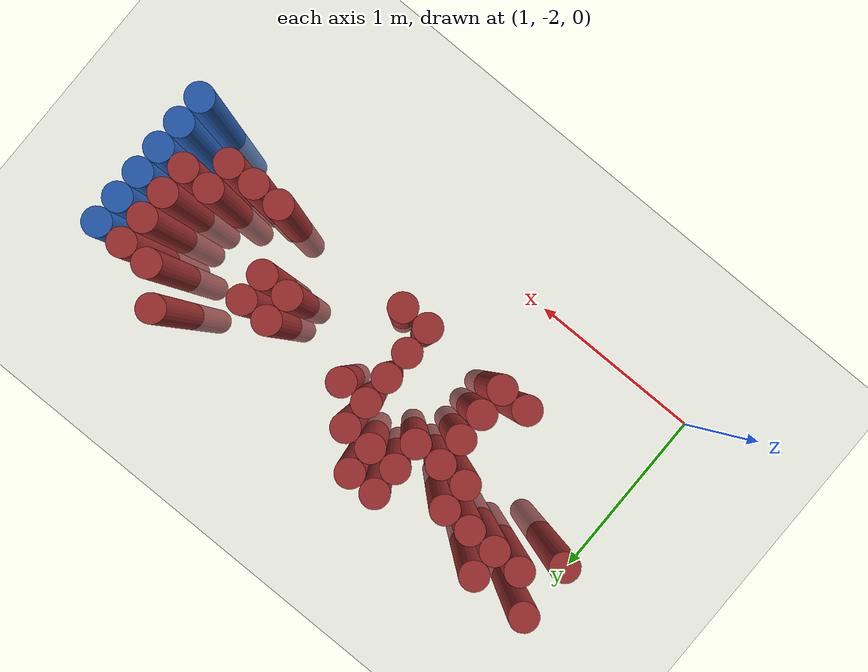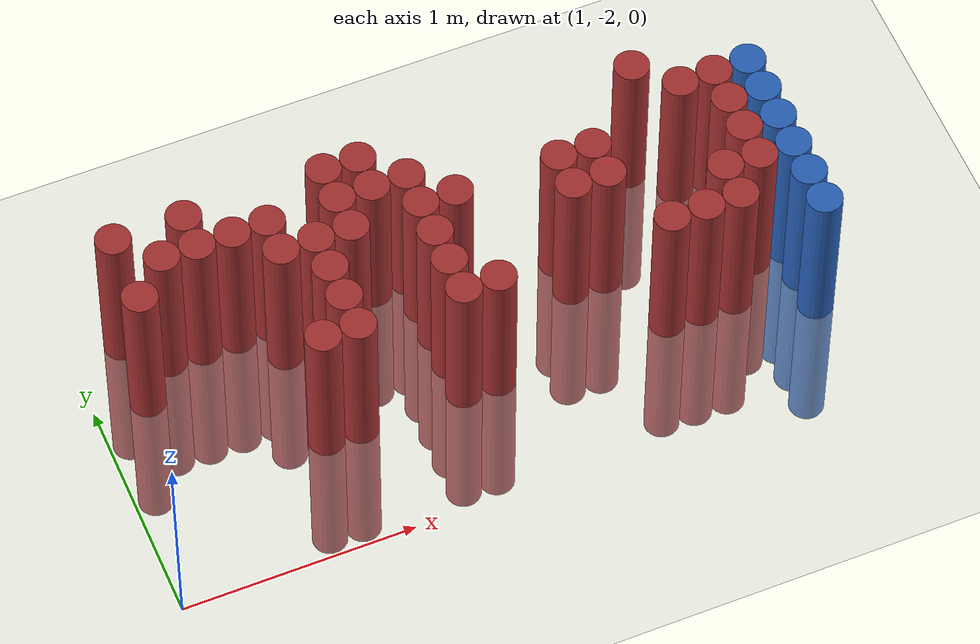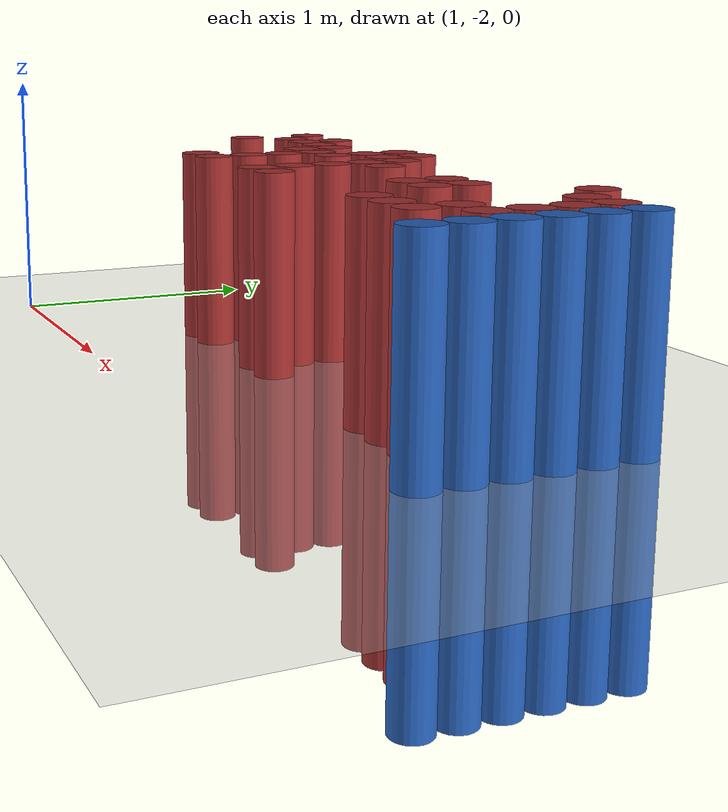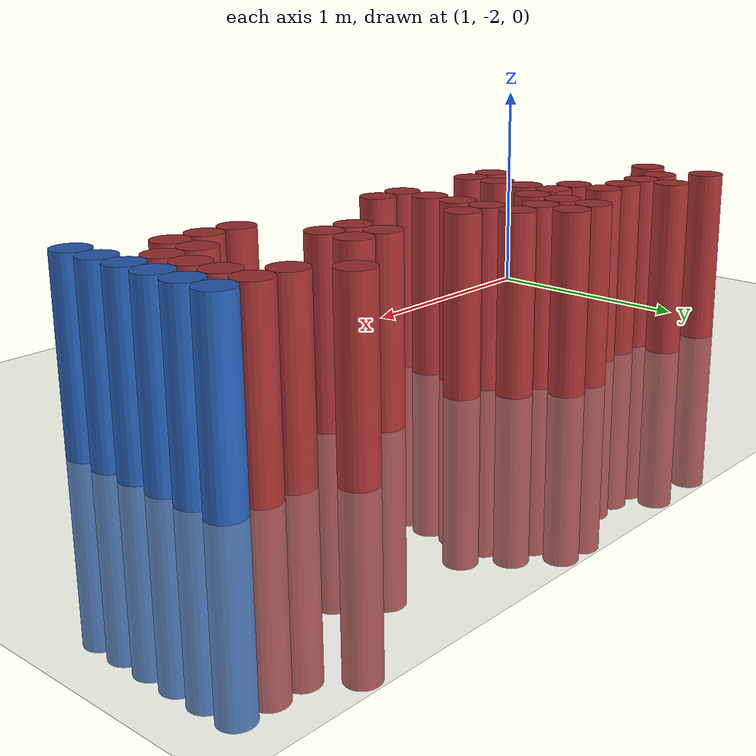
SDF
<sdf version="1.6">
 <world name="default">
  <model name="ground_plane">
   <static>1</static>
   <link name="link">
    <collision name="collision">
     <geometry><plane><normal>0 0 1</normal><size>100 100</size></plane></geometry>
     <surface><friction><ode><mu>100</mu><mu2>50</mu2></ode></friction></surface>
    </collision>
    <visual name="visual">
     <cast_shadows>0</cast_shadows>
     <geometry><plane><normal>0 0 1</normal><size>100 100</size></plane></geometry>
     <material>
      <script><uri>file://media/materials/scripts/gazebo.material</uri><name>Gazebo/Grey</name></script>
     </material>
    </visual>
   </link>
  </model>
  <model name="unit_cylinder_92">
   <static>1</static>
   <pose>3.925000 -1.625000 0.000000 0.000000 0.000000 0.000000</pose>
   <link name="link">
    <inertial>
     <mass>1</mass>
     <inertia><ixx>0.145833</ixx><ixy>0</ixy><ixz>0</ixz><iyy>0.145833</iyy><iyz>0</iyz><izz>0.125</izz></inertia>
    </inertial>
    <collision name="collision">
     <geometry><cylinder><radius>0.075000</radius><length>1.5</length></cylinder></geometry>
    </collision>
    <visual name="visual">
     <geometry><cylinder><radius>0.075000</radius><length>1.5</length></cylinder></geometry>
     <material>
      <ambient>0.152000 0.379000 0.720000 1</ambient>
      <diffuse>0.152000 0.379000 0.720000 1</diffuse>
     </material>
     <material>
      <script><name>Gazebo/Grey</name><uri>file://media/materials/scripts/gazebo.material</uri></script>
     </material>
    </visual>
   </link>
  </model>
  <model name="unit_cylinder_94">
   <static>1</static>
   <pose>3.925000 -1.475000 0.000000 0.000000 0.000000 0.000000</pose>
   <link name="link">
    <inertial>
     <mass>1</mass>
     <inertia><ixx>0.145833</ixx><ixy>0</ixy><ixz>0</ixz><iyy>0.145833</iyy><iyz>0</iyz><izz>0.125</izz></inertia>
    </inertial>
    <collision name="collision">
     <geometry><cylinder><radius>0.075000</radius><length>1.5</length></cylinder></geometry>
    </collision>
    <visual name="visual">
     <geometry><cylinder><radius>0.075000</radius><length>1.5</length></cylinder></geometry>
     <material>
      <ambient>0.152000 0.379000 0.720000 1</ambient>
      <diffuse>0.152000 0.379000 0.720000 1</diffuse>
     </material>
     <material>
      <script><name>Gazebo/Grey</name><uri>file://media/materials/scripts/gazebo.material</uri></script>
     </material>
    </visual>
   </link>
  </model>
  <model name="unit_cylinder_96">
   <static>1</static>
   <pose>3.925000 -1.325000 0.000000 0.000000 0.000000 0.000000</pose>
   <link name="link">
    <inertial>
     <mass>1</mass>
     <inertia><ixx>0.145833</ixx><ixy>0</ixy><ixz>0</ixz><iyy>0.145833</iyy><iyz>0</iyz><izz>0.125</izz></inertia>
    </inertial>
    <collision name="collision">
     <geometry><cylinder><radius>0.075000</radius><length>1.5</length></cylinder></geometry>
    </collision>
    <visual name="visual">
     <geometry><cylinder><radius>0.075000</radius><length>1.5</length></cylinder></geometry>
     <material>
      <ambient>0.152000 0.379000 0.720000 1</ambient>
      <diffuse>0.152000 0.379000 0.720000 1</diffuse>
     </material>
     <material>
      <script><name>Gazebo/Grey</name><uri>file://media/materials/scripts/gazebo.material</uri></script>
     </material>
    </visual>
   </link>
  </model>
  <model name="unit_cylinder_98">
   <static>1</static>
   <pose>3.925000 -1.175000 0.000000 0.000000 0.000000 0.000000</pose>
   <link name="link">
    <inertial>
     <mass>1</mass>
     <inertia><ixx>0.145833</ixx><ixy>0</ixy><ixz>0</ixz><iyy>0.145833</iyy><iyz>0</iyz><izz>0.125</izz></inertia>
    </inertial>
    <collision name="collision">
     <geometry><cylinder><radius>0.075000</radius><length>1.5</length></cylinder></geometry>
    </collision>
    <visual name="visual">
     <geometry><cylinder><radius>0.075000</radius><length>1.5</length></cylinder></geometry>
     <material>
      <ambient>0.152000 0.379000 0.720000 1</ambient>
      <diffuse>0.152000 0.379000 0.720000 1</diffuse>
     </material>
     <material>
      <script><name>Gazebo/Grey</name><uri>file://media/materials/scripts/gazebo.material</uri></script>
     </material>
    </visual>
   </link>
  </model>
  <model name="unit_cylinder_100">
   <static>1</static>
   <pose>3.925000 -1.025000 0.000000 0.000000 0.000000 0.000000</pose>
   <link name="link">
    <inertial>
     <mass>1</mass>
     <inertia><ixx>0.145833</ixx><ixy>0</ixy><ixz>0</ixz><iyy>0.145833</iyy><iyz>0</iyz><izz>0.125</izz></inertia>
    </inertial>
    <collision name="collision">
     <geometry><cylinder><radius>0.075000</radius><length>1.5</length></cylinder></geometry>
    </collision>
    <visual name="visual">
     <geometry><cylinder><radius>0.075000</radius><length>1.5</length></cylinder></geometry>
     <material>
      <ambient>0.152000 0.379000 0.720000 1</ambient>
      <diffuse>0.152000 0.379000 0.720000 1</diffuse>
     </material>
     <material>
      <script><name>Gazebo/Grey</name><uri>file://media/materials/scripts/gazebo.material</uri></script>
     </material>
    </visual>
   </link>
  </model>
  <model name="unit_cylinder_102">
   <static>1</static>
   <pose>3.925000 -0.875000 0.000000 0.000000 0.000000 0.000000</pose>
   <link name="link">
    <inertial>
     <mass>1</mass>
     <inertia><ixx>0.145833</ixx><ixy>0</ixy><ixz>0</ixz><iyy>0.145833</iyy><iyz>0</iyz><izz>0.125</izz></inertia>
    </inertial>
    <collision name="collision">
     <geometry><cylinder><radius>0.075000</radius><length>1.5</length></cylinder></geometry>
    </collision>
    <visual name="visual">
     <geometry><cylinder><radius>0.075000</radius><length>1.5</length></cylinder></geometry>
     <material>
      <ambient>0.152000 0.379000 0.720000 1</ambient>
      <diffuse>0.152000 0.379000 0.720000 1</diffuse>
     </material>
     <material>
      <script><name>Gazebo/Grey</name><uri>file://media/materials/scripts/gazebo.material</uri></script>
     </material>
    </visual>
   </link>
  </model>
  <model name="unit_cylinder_414">
   <static>1</static>
   <pose>1.225000 -1.025000 0.000000 0.000000 0.000000 0.000000</pose>
   <link name="link">
    <inertial>
     <mass>1</mass>
     <inertia><ixx>0.145833</ixx><ixy>0</ixy><ixz>0</ixz><iyy>0.145833</iyy><iyz>0</iyz><izz>0.125</izz></inertia>
    </inertial>
    <collision name="collision">
     <geometry><cylinder><radius>0.075000</radius><length>1.5</length></cylinder></geometry>
    </collision>
    <visual name="visual">
     <geometry><cylinder><radius>0.075000</radius><length>1.5</length></cylinder></geometry>
     <material>
      <ambient>0.648000 0.192000 0.192000 1</ambient>
      <diffuse>0.648000 0.192000 0.192000 1</diffuse>
     </material>
     <material>
      <script><name>Gazebo/Grey</name><uri>file://media/materials/scripts/gazebo.material</uri></script>
     </material>
    </visual>
   </link>
  </model>
  <model name="unit_cylinder_415">
   <static>1</static>
   <pose>1.225000 -0.725000 0.000000 0.000000 0.000000 0.000000</pose>
   <link name="link">
    <inertial>
     <mass>1</mass>
     <inertia><ixx>0.145833</ixx><ixy>0</ixy><ixz>0</ixz><iyy>0.145833</iyy><iyz>0</iyz><izz>0.125</izz></inertia>
    </inertial>
    <collision name="collision">
     <geometry><cylinder><radius>0.075000</radius><length>1.5</length></cylinder></geometry>
    </collision>
    <visual name="visual">
     <geometry><cylinder><radius>0.075000</radius><length>1.5</length></cylinder></geometry>
     <material>
      <ambient>0.648000 0.192000 0.192000 1</ambient>
      <diffuse>0.648000 0.192000 0.192000 1</diffuse>
     </material>
     <material>
      <script><name>Gazebo/Grey</name><uri>file://media/materials/scripts/gazebo.material</uri></script>
     </material>
    </visual>
   </link>
  </model>
  <model name="unit_cylinder_420">
   <static>1</static>
   <pose>1.375000 -0.875000 0.000000 0.000000 0.000000 0.000000</pose>
   <link name="link">
    <inertial>
     <mass>1</mass>
     <inertia><ixx>0.145833</ixx><ixy>0</ixy><ixz>0</ixz><iyy>0.145833</iyy><iyz>0</iyz><izz>0.125</izz></inertia>
    </inertial>
    <collision name="collision">
     <geometry><cylinder><radius>0.075000</radius><length>1.5</length></cylinder></geometry>
    </collision>
    <visual name="visual">
     <geometry><cylinder><radius>0.075000</radius><length>1.5</length></cylinder></geometry>
     <material>
      <ambient>0.648000 0.192000 0.192000 1</ambient>
      <diffuse>0.648000 0.192000 0.192000 1</diffuse>
     </material>
     <material>
      <script><name>Gazebo/Grey</name><uri>file://media/materials/scripts/gazebo.material</uri></script>
     </material>
    </visual>
   </link>
  </model>
  <model name="unit_cylinder_423">
   <static>1</static>
   <pose>1.525000 -0.875000 0.000000 0.000000 0.000000 0.000000</pose>
   <link name="link">
    <inertial>
     <mass>1</mass>
     <inertia><ixx>0.145833</ixx><ixy>0</ixy><ixz>0</ixz><iyy>0.145833</iyy><iyz>0</iyz><izz>0.125</izz></inertia>
    </inertial>
    <collision name="collision">
     <geometry><cylinder><radius>0.075000</radius><length>1.5</length></cylinder></geometry>
    </collision>
    <visual name="visual">
     <geometry><cylinder><radius>0.075000</radius><length>1.5</length></cylinder></geometry>
     <material>
      <ambient>0.648000 0.192000 0.192000 1</ambient>
      <diffuse>0.648000 0.192000 0.192000 1</diffuse>
     </material>
     <material>
      <script><name>Gazebo/Grey</name><uri>file://media/materials/scripts/gazebo.material</uri></script>
     </material>
    </visual>
   </link>
  </model>
  <model name="unit_cylinder_424">
   <static>1</static>
   <pose>1.525000 -0.725000 0.000000 0.000000 0.000000 0.000000</pose>
   <link name="link">
    <inertial>
     <mass>1</mass>
     <inertia><ixx>0.145833</ixx><ixy>0</ixy><ixz>0</ixz><iyy>0.145833</iyy><iyz>0</iyz><izz>0.125</izz></inertia>
    </inertial>
    <collision name="collision">
     <geometry><cylinder><radius>0.075000</radius><length>1.5</length></cylinder></geometry>
    </collision>
    <visual name="visual">
     <geometry><cylinder><radius>0.075000</radius><length>1.5</length></cylinder></geometry>
     <material>
      <ambient>0.648000 0.192000 0.192000 1</ambient>
      <diffuse>0.648000 0.192000 0.192000 1</diffuse>
     </material>
     <material>
      <script><name>Gazebo/Grey</name><uri>file://media/materials/scripts/gazebo.material</uri></script>
     </material>
    </visual>
   </link>
  </model>
  <model name="unit_cylinder_427">
   <static>1</static>
   <pose>1.675000 -0.875000 0.000000 0.000000 0.000000 0.000000</pose>
   <link name="link">
    <inertial>
     <mass>1</mass>
     <inertia><ixx>0.145833</ixx><ixy>0</ixy><ixz>0</ixz><iyy>0.145833</iyy><iyz>0</iyz><izz>0.125</izz></inertia>
    </inertial>
    <collision name="collision">
     <geometry><cylinder><radius>0.075000</radius><length>1.5</length></cylinder></geometry>
    </collision>
    <visual name="visual">
     <geometry><cylinder><radius>0.075000</radius><length>1.5</length></cylinder></geometry>
     <material>
      <ambient>0.648000 0.192000 0.192000 1</ambient>
      <diffuse>0.648000 0.192000 0.192000 1</diffuse>
     </material>
     <material>
      <script><name>Gazebo/Grey</name><uri>file://media/materials/scripts/gazebo.material</uri></script>
     </material>
    </visual>
   </link>
  </model>
  <model name="unit_cylinder_431">
   <static>1</static>
   <pose>1.825000 -1.475000 0.000000 0.000000 0.000000 0.000000</pose>
   <link name="link">
    <inertial>
     <mass>1</mass>
     <inertia><ixx>0.145833</ixx><ixy>0</ixy><ixz>0</ixz><iyy>0.145833</iyy><iyz>0</iyz><izz>0.125</izz></inertia>
    </inertial>
    <collision name="collision">
     <geometry><cylinder><radius>0.075000</radius><length>1.5</length></cylinder></geometry>
    </collision>
    <visual name="visual">
     <geometry><cylinder><radius>0.075000</radius><length>1.5</length></cylinder></geometry>
     <material>
      <ambient>0.648000 0.192000 0.192000 1</ambient>
      <diffuse>0.648000 0.192000 0.192000 1</diffuse>
     </material>
     <material>
      <script><name>Gazebo/Grey</name><uri>file://media/materials/scripts/gazebo.material</uri></script>
     </material>
    </visual>
   </link>
  </model>
  <model name="unit_cylinder_432">
   <static>1</static>
   <pose>1.825000 -1.025000 0.000000 0.000000 0.000000 0.000000</pose>
   <link name="link">
    <inertial>
     <mass>1</mass>
     <inertia><ixx>0.145833</ixx><ixy>0</ixy><ixz>0</ixz><iyy>0.145833</iyy><iyz>0</iyz><izz>0.125</izz></inertia>
    </inertial>
    <collision name="collision">
     <geometry><cylinder><radius>0.075000</radius><length>1.5</length></cylinder></geometry>
    </collision>
    <visual name="visual">
     <geometry><cylinder><radius>0.075000</radius><length>1.5</length></cylinder></geometry>
     <material>
      <ambient>0.648000 0.192000 0.192000 1</ambient>
      <diffuse>0.648000 0.192000 0.192000 1</diffuse>
     </material>
     <material>
      <script><name>Gazebo/Grey</name><uri>file://media/materials/scripts/gazebo.material</uri></script>
     </material>
    </visual>
   </link>
  </model>
  <model name="unit_cylinder_433">
   <static>1</static>
   <pose>1.825000 -0.875000 0.000000 0.000000 0.000000 0.000000</pose>
   <link name="link">
    <inertial>
     <mass>1</mass>
     <inertia><ixx>0.145833</ixx><ixy>0</ixy><ixz>0</ixz><iyy>0.145833</iyy><iyz>0</iyz><izz>0.125</izz></inertia>
    </inertial>
    <collision name="collision">
     <geometry><cylinder><radius>0.075000</radius><length>1.5</length></cylinder></geometry>
    </collision>
    <visual name="visual">
     <geometry><cylinder><radius>0.075000</radius><length>1.5</length></cylinder></geometry>
     <material>
      <ambient>0.648000 0.192000 0.192000 1</ambient>
      <diffuse>0.648000 0.192000 0.192000 1</diffuse>
     </material>
     <material>
      <script><name>Gazebo/Grey</name><uri>file://media/materials/scripts/gazebo.material</uri></script>
     </material>
    </visual>
   </link>
  </model>
  <model name="unit_cylinder_438">
   <static>1</static>
   <pose>1.975000 -1.475000 0.000000 0.000000 0.000000 0.000000</pose>
   <link name="link">
    <inertial>
     <mass>1</mass>
     <inertia><ixx>0.145833</ixx><ixy>0</ixy><ixz>0</ixz><iyy>0.145833</iyy><iyz>0</iyz><izz>0.125</izz></inertia>
    </inertial>
    <collision name="collision">
     <geometry><cylinder><radius>0.075000</radius><length>1.5</length></cylinder></geometry>
    </collision>
    <visual name="visual">
     <geometry><cylinder><radius>0.075000</radius><length>1.5</length></cylinder></geometry>
     <material>
      <ambient>0.648000 0.192000 0.192000 1</ambient>
      <diffuse>0.648000 0.192000 0.192000 1</diffuse>
     </material>
     <material>
      <script><name>Gazebo/Grey</name><uri>file://media/materials/scripts/gazebo.material</uri></script>
     </material>
    </visual>
   </link>
  </model>
  <model name="unit_cylinder_439">
   <static>1</static>
   <pose>1.975000 -1.325000 0.000000 0.000000 0.000000 0.000000</pose>
   <link name="link">
    <inertial>
     <mass>1</mass>
     <inertia><ixx>0.145833</ixx><ixy>0</ixy><ixz>0</ixz><iyy>0.145833</iyy><iyz>0</iyz><izz>0.125</izz></inertia>
    </inertial>
    <collision name="collision">
     <geometry><cylinder><radius>0.075000</radius><length>1.5</length></cylinder></geometry>
    </collision>
    <visual name="visual">
     <geometry><cylinder><radius>0.075000</radius><length>1.5</length></cylinder></geometry>
     <material>
      <ambient>0.648000 0.192000 0.192000 1</ambient>
      <diffuse>0.648000 0.192000 0.192000 1</diffuse>
     </material>
     <material>
      <script><name>Gazebo/Grey</name><uri>file://media/materials/scripts/gazebo.material</uri></script>
     </material>
    </visual>
   </link>
  </model>
  <model name="unit_cylinder_440">
   <static>1</static>
   <pose>1.975000 -1.175000 0.000000 0.000000 0.000000 0.000000</pose>
   <link name="link">
    <inertial>
     <mass>1</mass>
     <inertia><ixx>0.145833</ixx><ixy>0</ixy><ixz>0</ixz><iyy>0.145833</iyy><iyz>0</iyz><izz>0.125</izz></inertia>
    </inertial>
    <collision name="collision">
     <geometry><cylinder><radius>0.075000</radius><length>1.5</length></cylinder></geometry>
    </collision>
    <visual name="visual">
     <geometry><cylinder><radius>0.075000</radius><length>1.5</length></cylinder></geometry>
     <material>
      <ambient>0.648000 0.192000 0.192000 1</ambient>
      <diffuse>0.648000 0.192000 0.192000 1</diffuse>
     </material>
     <material>
      <script><name>Gazebo/Grey</name><uri>file://media/materials/scripts/gazebo.material</uri></script>
     </material>
    </visual>
   </link>
  </model>
  <model name="unit_cylinder_441">
   <static>1</static>
   <pose>1.975000 -1.025000 0.000000 0.000000 0.000000 0.000000</pose>
   <link name="link">
    <inertial>
     <mass>1</mass>
     <inertia><ixx>0.145833</ixx><ixy>0</ixy><ixz>0</ixz><iyy>0.145833</iyy><iyz>0</iyz><izz>0.125</izz></inertia>
    </inertial>
    <collision name="collision">
     <geometry><cylinder><radius>0.075000</radius><length>1.5</length></cylinder></geometry>
    </collision>
    <visual name="visual">
     <geometry><cylinder><radius>0.075000</radius><length>1.5</length></cylinder></geometry>
     <material>
      <ambient>0.648000 0.192000 0.192000 1</ambient>
      <diffuse>0.648000 0.192000 0.192000 1</diffuse>
     </material>
     <material>
      <script><name>Gazebo/Grey</name><uri>file://media/materials/scripts/gazebo.material</uri></script>
     </material>
    </visual>
   </link>
  </model>
  <model name="unit_cylinder_449">
   <static>1</static>
   <pose>2.125000 -1.025000 0.000000 0.000000 0.000000 0.000000</pose>
   <link name="link">
    <inertial>
     <mass>1</mass>
     <inertia><ixx>0.145833</ixx><ixy>0</ixy><ixz>0</ixz><iyy>0.145833</iyy><iyz>0</iyz><izz>0.125</izz></inertia>
    </inertial>
    <collision name="collision">
     <geometry><cylinder><radius>0.075000</radius><length>1.5</length></cylinder></geometry>
    </collision>
    <visual name="visual">
     <geometry><cylinder><radius>0.075000</radius><length>1.5</length></cylinder></geometry>
     <material>
      <ambient>0.648000 0.192000 0.192000 1</ambient>
      <diffuse>0.648000 0.192000 0.192000 1</diffuse>
     </material>
     <material>
      <script><name>Gazebo/Grey</name><uri>file://media/materials/scripts/gazebo.material</uri></script>
     </material>
    </visual>
   </link>
  </model>
  <model name="unit_cylinder_450">
   <static>1</static>
   <pose>2.125000 -0.875000 0.000000 0.000000 0.000000 0.000000</pose>
   <link name="link">
    <inertial>
     <mass>1</mass>
     <inertia><ixx>0.145833</ixx><ixy>0</ixy><ixz>0</ixz><iyy>0.145833</iyy><iyz>0</iyz><izz>0.125</izz></inertia>
    </inertial>
    <collision name="collision">
     <geometry><cylinder><radius>0.075000</radius><length>1.5</length></cylinder></geometry>
    </collision>
    <visual name="visual">
     <geometry><cylinder><radius>0.075000</radius><length>1.5</length></cylinder></geometry>
     <material>
      <ambient>0.648000 0.192000 0.192000 1</ambient>
      <diffuse>0.648000 0.192000 0.192000 1</diffuse>
     </material>
     <material>
      <script><name>Gazebo/Grey</name><uri>file://media/materials/scripts/gazebo.material</uri></script>
     </material>
    </visual>
   </link>
  </model>
  <model name="unit_cylinder_451">
   <static>1</static>
   <pose>2.125000 -0.725000 0.000000 0.000000 0.000000 0.000000</pose>
   <link name="link">
    <inertial>
     <mass>1</mass>
     <inertia><ixx>0.145833</ixx><ixy>0</ixy><ixz>0</ixz><iyy>0.145833</iyy><iyz>0</iyz><izz>0.125</izz></inertia>
    </inertial>
    <collision name="collision">
     <geometry><cylinder><radius>0.075000</radius><length>1.5</length></cylinder></geometry>
    </collision>
    <visual name="visual">
     <geometry><cylinder><radius>0.075000</radius><length>1.5</length></cylinder></geometry>
     <material>
      <ambient>0.648000 0.192000 0.192000 1</ambient>
      <diffuse>0.648000 0.192000 0.192000 1</diffuse>
     </material>
     <material>
      <script><name>Gazebo/Grey</name><uri>file://media/materials/scripts/gazebo.material</uri></script>
     </material>
    </visual>
   </link>
  </model>
  <model name="unit_cylinder_458">
   <static>1</static>
   <pose>2.275000 -0.875000 0.000000 0.000000 0.000000 0.000000</pose>
   <link name="link">
    <inertial>
     <mass>1</mass>
     <inertia><ixx>0.145833</ixx><ixy>0</ixy><ixz>0</ixz><iyy>0.145833</iyy><iyz>0</iyz><izz>0.125</izz></inertia>
    </inertial>
    <collision name="collision">
     <geometry><cylinder><radius>0.075000</radius><length>1.5</length></cylinder></geometry>
    </collision>
    <visual name="visual">
     <geometry><cylinder><radius>0.075000</radius><length>1.5</length></cylinder></geometry>
     <material>
      <ambient>0.648000 0.192000 0.192000 1</ambient>
      <diffuse>0.648000 0.192000 0.192000 1</diffuse>
     </material>
     <material>
      <script><name>Gazebo/Grey</name><uri>file://media/materials/scripts/gazebo.material</uri></script>
     </material>
    </visual>
   </link>
  </model>
  <model name="unit_cylinder_459">
   <static>1</static>
   <pose>2.275000 -0.725000 0.000000 0.000000 0.000000 0.000000</pose>
   <link name="link">
    <inertial>
     <mass>1</mass>
     <inertia><ixx>0.145833</ixx><ixy>0</ixy><ixz>0</ixz><iyy>0.145833</iyy><iyz>0</iyz><izz>0.125</izz></inertia>
    </inertial>
    <collision name="collision">
     <geometry><cylinder><radius>0.075000</radius><length>1.5</length></cylinder></geometry>
    </collision>
    <visual name="visual">
     <geometry><cylinder><radius>0.075000</radius><length>1.5</length></cylinder></geometry>
     <material>
      <ambient>0.648000 0.192000 0.192000 1</ambient>
      <diffuse>0.648000 0.192000 0.192000 1</diffuse>
     </material>
     <material>
      <script><name>Gazebo/Grey</name><uri>file://media/materials/scripts/gazebo.material</uri></script>
     </material>
    </visual>
   </link>
  </model>
  <model name="unit_cylinder_473">
   <static>1</static>
   <pose>2.425000 -1.475000 0.000000 0.000000 0.000000 0.000000</pose>
   <link name="link">
    <inertial>
     <mass>1</mass>
     <inertia><ixx>0.145833</ixx><ixy>0</ixy><ixz>0</ixz><iyy>0.145833</iyy><iyz>0</iyz><izz>0.125</izz></inertia>
    </inertial>
    <collision name="collision">
     <geometry><cylinder><radius>0.075000</radius><length>1.5</length></cylinder></geometry>
    </collision>
    <visual name="visual">
     <geometry><cylinder><radius>0.075000</radius><length>1.5</length></cylinder></geometry>
     <material>
      <ambient>0.648000 0.192000 0.192000 1</ambient>
      <diffuse>0.648000 0.192000 0.192000 1</diffuse>
     </material>
     <material>
      <script><name>Gazebo/Grey</name><uri>file://media/materials/scripts/gazebo.material</uri></script>
     </material>
    </visual>
   </link>
  </model>
  <model name="unit_cylinder_474">
   <static>1</static>
   <pose>2.425000 -1.325000 0.000000 0.000000 0.000000 0.000000</pose>
   <link name="link">
    <inertial>
     <mass>1</mass>
     <inertia><ixx>0.145833</ixx><ixy>0</ixy><ixz>0</ixz><iyy>0.145833</iyy><iyz>0</iyz><izz>0.125</izz></inertia>
    </inertial>
    <collision name="collision">
     <geometry><cylinder><radius>0.075000</radius><length>1.5</length></cylinder></geometry>
    </collision>
    <visual name="visual">
     <geometry><cylinder><radius>0.075000</radius><length>1.5</length></cylinder></geometry>
     <material>
      <ambient>0.648000 0.192000 0.192000 1</ambient>
      <diffuse>0.648000 0.192000 0.192000 1</diffuse>
     </material>
     <material>
      <script><name>Gazebo/Grey</name><uri>file://media/materials/scripts/gazebo.material</uri></script>
     </material>
    </visual>
   </link>
  </model>
  <model name="unit_cylinder_475">
   <static>1</static>
   <pose>2.425000 -1.175000 0.000000 0.000000 0.000000 0.000000</pose>
   <link name="link">
    <inertial>
     <mass>1</mass>
     <inertia><ixx>0.145833</ixx><ixy>0</ixy><ixz>0</ixz><iyy>0.145833</iyy><iyz>0</iyz><izz>0.125</izz></inertia>
    </inertial>
    <collision name="collision">
     <geometry><cylinder><radius>0.075000</radius><length>1.5</length></cylinder></geometry>
    </collision>
    <visual name="visual">
     <geometry><cylinder><radius>0.075000</radius><length>1.5</length></cylinder></geometry>
     <material>
      <ambient>0.648000 0.192000 0.192000 1</ambient>
      <diffuse>0.648000 0.192000 0.192000 1</diffuse>
     </material>
     <material>
      <script><name>Gazebo/Grey</name><uri>file://media/materials/scripts/gazebo.material</uri></script>
     </material>
    </visual>
   </link>
  </model>
  <model name="unit_cylinder_476">
   <static>1</static>
   <pose>2.425000 -1.025000 0.000000 0.000000 0.000000 0.000000</pose>
   <link name="link">
    <inertial>
     <mass>1</mass>
     <inertia><ixx>0.145833</ixx><ixy>0</ixy><ixz>0</ixz><iyy>0.145833</iyy><iyz>0</iyz><izz>0.125</izz></inertia>
    </inertial>
    <collision name="collision">
     <geometry><cylinder><radius>0.075000</radius><length>1.5</length></cylinder></geometry>
    </collision>
    <visual name="visual">
     <geometry><cylinder><radius>0.075000</radius><length>1.5</length></cylinder></geometry>
     <material>
      <ambient>0.648000 0.192000 0.192000 1</ambient>
      <diffuse>0.648000 0.192000 0.192000 1</diffuse>
     </material>
     <material>
      <script><name>Gazebo/Grey</name><uri>file://media/materials/scripts/gazebo.material</uri></script>
     </material>
    </visual>
   </link>
  </model>
  <model name="unit_cylinder_477">
   <static>1</static>
   <pose>2.425000 -0.875000 0.000000 0.000000 0.000000 0.000000</pose>
   <link name="link">
    <inertial>
     <mass>1</mass>
     <inertia><ixx>0.145833</ixx><ixy>0</ixy><ixz>0</ixz><iyy>0.145833</iyy><iyz>0</iyz><izz>0.125</izz></inertia>
    </inertial>
    <collision name="collision">
     <geometry><cylinder><radius>0.075000</radius><length>1.5</length></cylinder></geometry>
    </collision>
    <visual name="visual">
     <geometry><cylinder><radius>0.075000</radius><length>1.5</length></cylinder></geometry>
     <material>
      <ambient>0.648000 0.192000 0.192000 1</ambient>
      <diffuse>0.648000 0.192000 0.192000 1</diffuse>
     </material>
     <material>
      <script><name>Gazebo/Grey</name><uri>file://media/materials/scripts/gazebo.material</uri></script>
     </material>
    </visual>
   </link>
  </model>
  <model name="unit_cylinder_488">
   <static>1</static>
   <pose>2.575000 -1.475000 0.000000 0.000000 0.000000 0.000000</pose>
   <link name="link">
    <inertial>
     <mass>1</mass>
     <inertia><ixx>0.145833</ixx><ixy>0</ixy><ixz>0</ixz><iyy>0.145833</iyy><iyz>0</iyz><izz>0.125</izz></inertia>
    </inertial>
    <collision name="collision">
     <geometry><cylinder><radius>0.075000</radius><length>1.5</length></cylinder></geometry>
    </collision>
    <visual name="visual">
     <geometry><cylinder><radius>0.075000</radius><length>1.5</length></cylinder></geometry>
     <material>
      <ambient>0.648000 0.192000 0.192000 1</ambient>
      <diffuse>0.648000 0.192000 0.192000 1</diffuse>
     </material>
     <material>
      <script><name>Gazebo/Grey</name><uri>file://media/materials/scripts/gazebo.material</uri></script>
     </material>
    </visual>
   </link>
  </model>
  <model name="unit_cylinder_489">
   <static>1</static>
   <pose>2.575000 -1.025000 0.000000 0.000000 0.000000 0.000000</pose>
   <link name="link">
    <inertial>
     <mass>1</mass>
     <inertia><ixx>0.145833</ixx><ixy>0</ixy><ixz>0</ixz><iyy>0.145833</iyy><iyz>0</iyz><izz>0.125</izz></inertia>
    </inertial>
    <collision name="collision">
     <geometry><cylinder><radius>0.075000</radius><length>1.5</length></cylinder></geometry>
    </collision>
    <visual name="visual">
     <geometry><cylinder><radius>0.075000</radius><length>1.5</length></cylinder></geometry>
     <material>
      <ambient>0.648000 0.192000 0.192000 1</ambient>
      <diffuse>0.648000 0.192000 0.192000 1</diffuse>
     </material>
     <material>
      <script><name>Gazebo/Grey</name><uri>file://media/materials/scripts/gazebo.material</uri></script>
     </material>
    </visual>
   </link>
  </model>
  <model name="unit_cylinder_502">
   <static>1</static>
   <pose>3.025000 -1.175000 0.000000 0.000000 0.000000 0.000000</pose>
   <link name="link">
    <inertial>
     <mass>1</mass>
     <inertia><ixx>0.145833</ixx><ixy>0</ixy><ixz>0</ixz><iyy>0.145833</iyy><iyz>0</iyz><izz>0.125</izz></inertia>
    </inertial>
    <collision name="collision">
     <geometry><cylinder><radius>0.075000</radius><length>1.5</length></cylinder></geometry>
    </collision>
    <visual name="visual">
     <geometry><cylinder><radius>0.075000</radius><length>1.5</length></cylinder></geometry>
     <material>
      <ambient>0.648000 0.192000 0.192000 1</ambient>
      <diffuse>0.648000 0.192000 0.192000 1</diffuse>
     </material>
     <material>
      <script><name>Gazebo/Grey</name><uri>file://media/materials/scripts/gazebo.material</uri></script>
     </material>
    </visual>
   </link>
  </model>
  <model name="unit_cylinder_503">
   <static>1</static>
   <pose>3.025000 -1.025000 0.000000 0.000000 0.000000 0.000000</pose>
   <link name="link">
    <inertial>
     <mass>1</mass>
     <inertia><ixx>0.145833</ixx><ixy>0</ixy><ixz>0</ixz><iyy>0.145833</iyy><iyz>0</iyz><izz>0.125</izz></inertia>
    </inertial>
    <collision name="collision">
     <geometry><cylinder><radius>0.075000</radius><length>1.5</length></cylinder></geometry>
    </collision>
    <visual name="visual">
     <geometry><cylinder><radius>0.075000</radius><length>1.5</length></cylinder></geometry>
     <material>
      <ambient>0.648000 0.192000 0.192000 1</ambient>
      <diffuse>0.648000 0.192000 0.192000 1</diffuse>
     </material>
     <material>
      <script><name>Gazebo/Grey</name><uri>file://media/materials/scripts/gazebo.material</uri></script>
     </material>
    </visual>
   </link>
  </model>
  <model name="unit_cylinder_507">
   <static>1</static>
   <pose>3.175000 -1.175000 0.000000 0.000000 0.000000 0.000000</pose>
   <link name="link">
    <inertial>
     <mass>1</mass>
     <inertia><ixx>0.145833</ixx><ixy>0</ixy><ixz>0</ixz><iyy>0.145833</iyy><iyz>0</iyz><izz>0.125</izz></inertia>
    </inertial>
    <collision name="collision">
     <geometry><cylinder><radius>0.075000</radius><length>1.5</length></cylinder></geometry>
    </collision>
    <visual name="visual">
     <geometry><cylinder><radius>0.075000</radius><length>1.5</length></cylinder></geometry>
     <material>
      <ambient>0.648000 0.192000 0.192000 1</ambient>
      <diffuse>0.648000 0.192000 0.192000 1</diffuse>
     </material>
     <material>
      <script><name>Gazebo/Grey</name><uri>file://media/materials/scripts/gazebo.material</uri></script>
     </material>
    </visual>
   </link>
  </model>
  <model name="unit_cylinder_508">
   <static>1</static>
   <pose>3.175000 -1.025000 0.000000 0.000000 0.000000 0.000000</pose>
   <link name="link">
    <inertial>
     <mass>1</mass>
     <inertia><ixx>0.145833</ixx><ixy>0</ixy><ixz>0</ixz><iyy>0.145833</iyy><iyz>0</iyz><izz>0.125</izz></inertia>
    </inertial>
    <collision name="collision">
     <geometry><cylinder><radius>0.075000</radius><length>1.5</length></cylinder></geometry>
    </collision>
    <visual name="visual">
     <geometry><cylinder><radius>0.075000</radius><length>1.5</length></cylinder></geometry>
     <material>
      <ambient>0.648000 0.192000 0.192000 1</ambient>
      <diffuse>0.648000 0.192000 0.192000 1</diffuse>
     </material>
     <material>
      <script><name>Gazebo/Grey</name><uri>file://media/materials/scripts/gazebo.material</uri></script>
     </material>
    </visual>
   </link>
  </model>
  <model name="unit_cylinder_516">
   <static>1</static>
   <pose>3.325000 -1.475000 0.000000 0.000000 0.000000 0.000000</pose>
   <link name="link">
    <inertial>
     <mass>1</mass>
     <inertia><ixx>0.145833</ixx><ixy>0</ixy><ixz>0</ixz><iyy>0.145833</iyy><iyz>0</iyz><izz>0.125</izz></inertia>
    </inertial>
    <collision name="collision">
     <geometry><cylinder><radius>0.075000</radius><length>1.5</length></cylinder></geometry>
    </collision>
    <visual name="visual">
     <geometry><cylinder><radius>0.075000</radius><length>1.5</length></cylinder></geometry>
     <material>
      <ambient>0.648000 0.192000 0.192000 1</ambient>
      <diffuse>0.648000 0.192000 0.192000 1</diffuse>
     </material>
     <material>
      <script><name>Gazebo/Grey</name><uri>file://media/materials/scripts/gazebo.material</uri></script>
     </material>
    </visual>
   </link>
  </model>
  <model name="unit_cylinder_528">
   <static>1</static>
   <pose>3.475000 -1.475000 0.000000 0.000000 0.000000 0.000000</pose>
   <link name="link">
    <inertial>
     <mass>1</mass>
     <inertia><ixx>0.145833</ixx><ixy>0</ixy><ixz>0</ixz><iyy>0.145833</iyy><iyz>0</iyz><izz>0.125</izz></inertia>
    </inertial>
    <collision name="collision">
     <geometry><cylinder><radius>0.075000</radius><length>1.5</length></cylinder></geometry>
    </collision>
    <visual name="visual">
     <geometry><cylinder><radius>0.075000</radius><length>1.5</length></cylinder></geometry>
     <material>
      <ambient>0.648000 0.192000 0.192000 1</ambient>
      <diffuse>0.648000 0.192000 0.192000 1</diffuse>
     </material>
     <material>
      <script><name>Gazebo/Grey</name><uri>file://media/materials/scripts/gazebo.material</uri></script>
     </material>
    </visual>
   </link>
  </model>
  <model name="unit_cylinder_529">
   <static>1</static>
   <pose>3.475000 -0.725000 0.000000 0.000000 0.000000 0.000000</pose>
   <link name="link">
    <inertial>
     <mass>1</mass>
     <inertia><ixx>0.145833</ixx><ixy>0</ixy><ixz>0</ixz><iyy>0.145833</iyy><iyz>0</iyz><izz>0.125</izz></inertia>
    </inertial>
    <collision name="collision">
     <geometry><cylinder><radius>0.075000</radius><length>1.5</length></cylinder></geometry>
    </collision>
    <visual name="visual">
     <geometry><cylinder><radius>0.075000</radius><length>1.5</length></cylinder></geometry>
     <material>
      <ambient>0.648000 0.192000 0.192000 1</ambient>
      <diffuse>0.648000 0.192000 0.192000 1</diffuse>
     </material>
     <material>
      <script><name>Gazebo/Grey</name><uri>file://media/materials/scripts/gazebo.material</uri></script>
     </material>
    </visual>
   </link>
  </model>
  <model name="unit_cylinder_540">
   <static>1</static>
   <pose>3.625000 -1.475000 0.000000 0.000000 0.000000 0.000000</pose>
   <link name="link">
    <inertial>
     <mass>1</mass>
     <inertia><ixx>0.145833</ixx><ixy>0</ixy><ixz>0</ixz><iyy>0.145833</iyy><iyz>0</iyz><izz>0.125</izz></inertia>
    </inertial>
    <collision name="collision">
     <geometry><cylinder><radius>0.075000</radius><length>1.5</length></cylinder></geometry>
    </collision>
    <visual name="visual">
     <geometry><cylinder><radius>0.075000</radius><length>1.5</length></cylinder></geometry>
     <material>
      <ambient>0.648000 0.192000 0.192000 1</ambient>
      <diffuse>0.648000 0.192000 0.192000 1</diffuse>
     </material>
     <material>
      <script><name>Gazebo/Grey</name><uri>file://media/materials/scripts/gazebo.material</uri></script>
     </material>
    </visual>
   </link>
  </model>
  <model name="unit_cylinder_541">
   <static>1</static>
   <pose>3.625000 -1.325000 0.000000 0.000000 0.000000 0.000000</pose>
   <link name="link">
    <inertial>
     <mass>1</mass>
     <inertia><ixx>0.145833</ixx><ixy>0</ixy><ixz>0</ixz><iyy>0.145833</iyy><iyz>0</iyz><izz>0.125</izz></inertia>
    </inertial>
    <collision name="collision">
     <geometry><cylinder><radius>0.075000</radius><length>1.5</length></cylinder></geometry>
    </collision>
    <visual name="visual">
     <geometry><cylinder><radius>0.075000</radius><length>1.5</length></cylinder></geometry>
     <material>
      <ambient>0.648000 0.192000 0.192000 1</ambient>
      <diffuse>0.648000 0.192000 0.192000 1</diffuse>
     </material>
     <material>
      <script><name>Gazebo/Grey</name><uri>file://media/materials/scripts/gazebo.material</uri></script>
     </material>
    </visual>
   </link>
  </model>
  <model name="unit_cylinder_542">
   <static>1</static>
   <pose>3.625000 -0.875000 0.000000 0.000000 0.000000 0.000000</pose>
   <link name="link">
    <inertial>
     <mass>1</mass>
     <inertia><ixx>0.145833</ixx><ixy>0</ixy><ixz>0</ixz><iyy>0.145833</iyy><iyz>0</iyz><izz>0.125</izz></inertia>
    </inertial>
    <collision name="collision">
     <geometry><cylinder><radius>0.075000</radius><length>1.5</length></cylinder></geometry>
    </collision>
    <visual name="visual">
     <geometry><cylinder><radius>0.075000</radius><length>1.5</length></cylinder></geometry>
     <material>
      <ambient>0.648000 0.192000 0.192000 1</ambient>
      <diffuse>0.648000 0.192000 0.192000 1</diffuse>
     </material>
     <material>
      <script><name>Gazebo/Grey</name><uri>file://media/materials/scripts/gazebo.material</uri></script>
     </material>
    </visual>
   </link>
  </model>
  <model name="unit_cylinder_552">
   <static>1</static>
   <pose>3.775000 -1.325000 0.000000 0.000000 0.000000 0.000000</pose>
   <link name="link">
    <inertial>
     <mass>1</mass>
     <inertia><ixx>0.145833</ixx><ixy>0</ixy><ixz>0</ixz><iyy>0.145833</iyy><iyz>0</iyz><izz>0.125</izz></inertia>
    </inertial>
    <collision name="collision">
     <geometry><cylinder><radius>0.075000</radius><length>1.5</length></cylinder></geometry>
    </collision>
    <visual name="visual">
     <geometry><cylinder><radius>0.075000</radius><length>1.5</length></cylinder></geometry>
     <material>
      <ambient>0.648000 0.192000 0.192000 1</ambient>
      <diffuse>0.648000 0.192000 0.192000 1</diffuse>
     </material>
     <material>
      <script><name>Gazebo/Grey</name><uri>file://media/materials/scripts/gazebo.material</uri></script>
     </material>
    </visual>
   </link>
  </model>
  <model name="unit_cylinder_553">
   <static>1</static>
   <pose>3.775000 -1.175000 0.000000 0.000000 0.000000 0.000000</pose>
   <link name="link">
    <inertial>
     <mass>1</mass>
     <inertia><ixx>0.145833</ixx><ixy>0</ixy><ixz>0</ixz><iyy>0.145833</iyy><iyz>0</iyz><izz>0.125</izz></inertia>
    </inertial>
    <collision name="collision">
     <geometry><cylinder><radius>0.075000</radius><length>1.5</length></cylinder></geometry>
    </collision>
    <visual name="visual">
     <geometry><cylinder><radius>0.075000</radius><length>1.5</length></cylinder></geometry>
     <material>
      <ambient>0.648000 0.192000 0.192000 1</ambient>
      <diffuse>0.648000 0.192000 0.192000 1</diffuse>
     </material>
     <material>
      <script><name>Gazebo/Grey</name><uri>file://media/materials/scripts/gazebo.material</uri></script>
     </material>
    </visual>
   </link>
  </model>
  <model name="unit_cylinder_554">
   <static>1</static>
   <pose>3.775000 -1.025000 0.000000 0.000000 0.000000 0.000000</pose>
   <link name="link">
    <inertial>
     <mass>1</mass>
     <inertia><ixx>0.145833</ixx><ixy>0</ixy><ixz>0</ixz><iyy>0.145833</iyy><iyz>0</iyz><izz>0.125</izz></inertia>
    </inertial>
    <collision name="collision">
     <geometry><cylinder><radius>0.075000</radius><length>1.5</length></cylinder></geometry>
    </collision>
    <visual name="visual">
     <geometry><cylinder><radius>0.075000</radius><length>1.5</length></cylinder></geometry>
     <material>
      <ambient>0.648000 0.192000 0.192000 1</ambient>
      <diffuse>0.648000 0.192000 0.192000 1</diffuse>
     </material>
     <material>
      <script><name>Gazebo/Grey</name><uri>file://media/materials/scripts/gazebo.material</uri></script>
     </material>
    </visual>
   </link>
  </model>
  <model name="unit_cylinder_555">
   <static>1</static>
   <pose>3.775000 -0.875000 0.000000 0.000000 0.000000 0.000000</pose>
   <link name="link">
    <inertial>
     <mass>1</mass>
     <inertia><ixx>0.145833</ixx><ixy>0</ixy><ixz>0</ixz><iyy>0.145833</iyy><iyz>0</iyz><izz>0.125</izz></inertia>
    </inertial>
    <collision name="collision">
     <geometry><cylinder><radius>0.075000</radius><length>1.5</length></cylinder></geometry>
    </collision>
    <visual name="visual">
     <geometry><cylinder><radius>0.075000</radius><length>1.5</length></cylinder></geometry>
     <material>
      <ambient>0.648000 0.192000 0.192000 1</ambient>
      <diffuse>0.648000 0.192000 0.192000 1</diffuse>
     </material>
     <material>
      <script><name>Gazebo/Grey</name><uri>file://media/materials/scripts/gazebo.material</uri></script>
     </material>
    </visual>
   </link>
  </model>
  <model name="unit_cylinder_572">
   <static>1</static>
   <pose>3.925000 -1.625000 0.000000 0.000000 0.000000 0.000000</pose>
   <link name="link">
    <inertial>
     <mass>1</mass>
     <inertia><ixx>0.145833</ixx><ixy>0</ixy><ixz>0</ixz><iyy>0.145833</iyy><iyz>0</iyz><izz>0.125</izz></inertia>
    </inertial>
    <collision name="collision">
     <geometry><cylinder><radius>0.075000</radius><length>1.5</length></cylinder></geometry>
    </collision>
    <visual name="visual">
     <geometry><cylinder><radius>0.075000</radius><length>1.5</length></cylinder></geometry>
     <material>
      <ambient>0.152000 0.379000 0.720000 1</ambient>
      <diffuse>0.152000 0.379000 0.720000 1</diffuse>
     </material>
     <material>
      <script><name>Gazebo/Grey</name><uri>file://media/materials/scripts/gazebo.material</uri></script>
     </material>
    </visual>
   </link>
  </model>
  <model name="unit_cylinder_573">
   <static>1</static>
   <pose>3.925000 -1.475000 0.000000 0.000000 0.000000 0.000000</pose>
   <link name="link">
    <inertial>
     <mass>1</mass>
     <inertia><ixx>0.145833</ixx><ixy>0</ixy><ixz>0</ixz><iyy>0.145833</iyy><iyz>0</iyz><izz>0.125</izz></inertia>
    </inertial>
    <collision name="collision">
     <geometry><cylinder><radius>0.075000</radius><length>1.5</length></cylinder></geometry>
    </collision>
    <visual name="visual">
     <geometry><cylinder><radius>0.075000</radius><length>1.5</length></cylinder></geometry>
     <material>
      <ambient>0.152000 0.379000 0.720000 1</ambient>
      <diffuse>0.152000 0.379000 0.720000 1</diffuse>
     </material>
     <material>
      <script><name>Gazebo/Grey</name><uri>file://media/materials/scripts/gazebo.material</uri></script>
     </material>
    </visual>
   </link>
  </model>
  <model name="unit_cylinder_574">
   <static>1</static>
   <pose>3.925000 -1.325000 0.000000 0.000000 0.000000 0.000000</pose>
   <link name="link">
    <inertial>
     <mass>1</mass>
     <inertia><ixx>0.145833</ixx><ixy>0</ixy><ixz>0</ixz><iyy>0.145833</iyy><iyz>0</iyz><izz>0.125</izz></inertia>
    </inertial>
    <collision name="collision">
     <geometry><cylinder><radius>0.075000</radius><length>1.5</length></cylinder></geometry>
    </collision>
    <visual name="visual">
     <geometry><cylinder><radius>0.075000</radius><length>1.5</length></cylinder></geometry>
     <material>
      <ambient>0.152000 0.379000 0.720000 1</ambient>
      <diffuse>0.152000 0.379000 0.720000 1</diffuse>
     </material>
     <material>
      <script><name>Gazebo/Grey</name><uri>file://media/materials/scripts/gazebo.material</uri></script>
     </material>
    </visual>
   </link>
  </model>
  <model name="unit_cylinder_575">
   <static>1</static>
   <pose>3.925000 -1.175000 0.000000 0.000000 0.000000 0.000000</pose>
   <link name="link">
    <inertial>
     <mass>1</mass>
     <inertia><ixx>0.145833</ixx><ixy>0</ixy><ixz>0</ixz><iyy>0.145833</iyy><iyz>0</iyz><izz>0.125</izz></inertia>
    </inertial>
    <collision name="collision">
     <geometry><cylinder><radius>0.075000</radius><length>1.5</length></cylinder></geometry>
    </collision>
    <visual name="visual">
     <geometry><cylinder><radius>0.075000</radius><length>1.5</length></cylinder></geometry>
     <material>
      <ambient>0.152000 0.379000 0.720000 1</ambient>
      <diffuse>0.152000 0.379000 0.720000 1</diffuse>
     </material>
     <material>
      <script><name>Gazebo/Grey</name><uri>file://media/materials/scripts/gazebo.material</uri></script>
     </material>
    </visual>
   </link>
  </model>
  <model name="unit_cylinder_576">
   <static>1</static>
   <pose>3.925000 -1.025000 0.000000 0.000000 0.000000 0.000000</pose>
   <link name="link">
    <inertial>
     <mass>1</mass>
     <inertia><ixx>0.145833</ixx><ixy>0</ixy><ixz>0</ixz><iyy>0.145833</iyy><iyz>0</iyz><izz>0.125</izz></inertia>
    </inertial>
    <collision name="collision">
     <geometry><cylinder><radius>0.075000</radius><length>1.5</length></cylinder></geometry>
    </collision>
    <visual name="visual">
     <geometry><cylinder><radius>0.075000</radius><length>1.5</length></cylinder></geometry>
     <material>
      <ambient>0.152000 0.379000 0.720000 1</ambient>
      <diffuse>0.152000 0.379000 0.720000 1</diffuse>
     </material>
     <material>
      <script><name>Gazebo/Grey</name><uri>file://media/materials/scripts/gazebo.material</uri></script>
     </material>
    </visual>
   </link>
  </model>
  <model name="unit_cylinder_577">
   <static>1</static>
   <pose>3.925000 -0.875000 0.000000 0.000000 0.000000 0.000000</pose>
   <link name="link">
    <inertial>
     <mass>1</mass>
     <inertia><ixx>0.145833</ixx><ixy>0</ixy><ixz>0</ixz><iyy>0.145833</iyy><iyz>0</iyz><izz>0.125</izz></inertia>
    </inertial>
    <collision name="collision">
     <geometry><cylinder><radius>0.075000</radius><length>1.5</length></cylinder></geometry>
    </collision>
    <visual name="visual">
     <geometry><cylinder><radius>0.075000</radius><length>1.5</length></cylinder></geometry>
     <material>
      <ambient>0.152000 0.379000 0.720000 1</ambient>
      <diffuse>0.152000 0.379000 0.720000 1</diffuse>
     </material>
     <material>
      <script><name>Gazebo/Grey</name><uri>file://media/materials/scripts/gazebo.material</uri></script>
     </material>
    </visual>
   </link>
  </model>
 </world>
</sdf>
